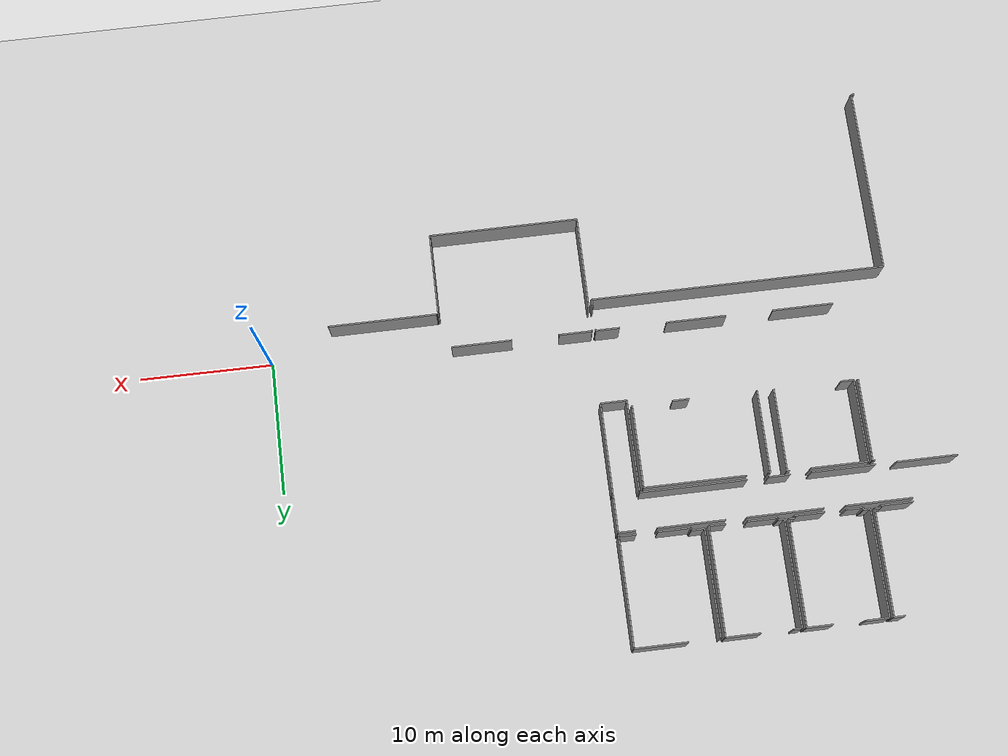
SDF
<sdf version="1.6">
 <world name="default">
  <model name="ground_plane">
   <static>1</static>
   <link name="link">
    <collision name="collision">
     <geometry><plane><normal>0 0 1</normal><size>100 100</size></plane></geometry>
     <surface><friction><ode><mu>100</mu><mu2>50</mu2></ode></friction></surface>
    </collision>
    <visual name="visual">
     <cast_shadows>0</cast_shadows>
     <geometry><plane><normal>0 0 1</normal><size>100 100</size></plane></geometry>
     <material>
      <script><uri>file://media/materials/scripts/gazebo.material</uri><name>Gazebo/Grey</name></script>
     </material>
    </visual>
   </link>
  </model>
  <model name="50057024">
   <static>1</static>
   <link name="Wall_9">
    <collision name="Wall_9_Collision">
     <geometry><box><size>0.824693894374 0.1 2.5</size></box></geometry>
     <pose>0.412346947187 0 1.25 0 0 0</pose>
    </collision>
    <visual name="Wall_9_Visual">
     <pose>0.412346947187 0 1.25 0 0 0</pose>
     <geometry><box><size>0.824693894374 0.1 2.5</size></box></geometry>
     <material>
      <script><uri>file://media/materials/scripts/gazebo.material</uri><name>Gazebo/Grey</name></script>
      <ambient>1 1 1 1</ambient>
     </material>
    </visual>
    <pose>12.590183061 -0.0110331183777 0 0 0 0.0</pose>
   </link>
   <link name="Wall_10">
    <collision name="Wall_10_Collision">
     <geometry><box><size>7.89197689386 0.1 2.5</size></box></geometry>
     <pose>3.94598844693 0 1.25 0 0 0</pose>
    </collision>
    <visual name="Wall_10_Visual">
     <pose>3.94598844693 0 1.25 0 0 0</pose>
     <geometry><box><size>7.89197689386 0.1 2.5</size></box></geometry>
     <material>
      <script><uri>file://media/materials/scripts/gazebo.material</uri><name>Gazebo/Grey</name></script>
      <ambient>1 1 1 1</ambient>
     </material>
    </visual>
    <pose>13.4148769554 -0.0110331183777 0 0 0 -1.57079632679</pose>
   </link>
   <link name="Wall_11">
    <collision name="Wall_11_Collision">
     <geometry><box><size>0.460347353003 0.1 2.5</size></box></geometry>
     <pose>0.230173676501 0 1.25 0 0 0</pose>
    </collision>
    <visual name="Wall_11_Visual">
     <pose>0.230173676501 0 1.25 0 0 0</pose>
     <geometry><box><size>0.460347353003 0.1 2.5</size></box></geometry>
     <material>
      <script><uri>file://media/materials/scripts/gazebo.material</uri><name>Gazebo/Grey</name></script>
      <ambient>1 1 1 1</ambient>
     </material>
    </visual>
    <pose>13.4148769554 -7.90301001224 0 0 0 3.14159265359</pose>
   </link>
   <link name="Wall_12">
    <collision name="Wall_12_Collision">
     <geometry><box><size>0.172598553013 0.1 2.5</size></box></geometry>
     <pose>0.0862992765064 0 1.25 0 0 0</pose>
    </collision>
    <visual name="Wall_12_Visual">
     <pose>0.0862992765064 0 1.25 0 0 0</pose>
     <geometry><box><size>0.172598553013 0.1 2.5</size></box></geometry>
     <material>
      <script><uri>file://media/materials/scripts/gazebo.material</uri><name>Gazebo/Grey</name></script>
      <ambient>1 1 1 1</ambient>
     </material>
    </visual>
    <pose>12.9545296024 -7.90301001224 0 0 0 -1.57079632679</pose>
   </link>
   <link name="Wall_13">
    <collision name="Wall_13_Collision">
     <geometry><box><size>2.41993063085 0.1 2.5</size></box></geometry>
     <pose>1.20996531543 0 1.25 0 0 0</pose>
    </collision>
    <visual name="Wall_13_Visual">
     <pose>1.20996531543 0 1.25 0 0 0</pose>
     <geometry><box><size>2.41993063085 0.1 2.5</size></box></geometry>
     <material>
      <script><uri>file://media/materials/scripts/gazebo.material</uri><name>Gazebo/Grey</name></script>
      <ambient>1 1 1 1</ambient>
     </material>
    </visual>
    <pose>12.9545296024 -8.07560856525 0 0 0 3.14159265359</pose>
   </link>
   <link name="Wall_15">
    <collision name="Wall_15_Collision">
     <geometry><box><size>7.90351728205 0.1 2.5</size></box></geometry>
     <pose>3.95175864102 0 1.25 0 0 0</pose>
    </collision>
    <visual name="Wall_15_Visual">
     <pose>3.95175864102 0 1.25 0 0 0</pose>
     <geometry><box><size>7.90351728205 0.1 2.5</size></box></geometry>
     <material>
      <script><uri>file://media/materials/scripts/gazebo.material</uri><name>Gazebo/Grey</name></script>
      <ambient>1 1 1 1</ambient>
     </material>
    </visual>
    <pose>13.7032598426 -7.91974991598 0 0 0 1.57079632679</pose>
   </link>
   <link name="Wall_16">
    <collision name="Wall_16_Collision">
     <geometry><box><size>1.74754449707 0.1 2.5</size></box></geometry>
     <pose>0.873772248537 0 1.25 0 0 0</pose>
    </collision>
    <visual name="Wall_16_Visual">
     <pose>0.873772248537 0 1.25 0 0 0</pose>
     <geometry><box><size>1.74754449707 0.1 2.5</size></box></geometry>
     <material>
      <script><uri>file://media/materials/scripts/gazebo.material</uri><name>Gazebo/Grey</name></script>
      <ambient>1 1 1 1</ambient>
     </material>
    </visual>
    <pose>13.7032598426 -0.0162326339351 0 0 0 0.0</pose>
   </link>
   <link name="Wall_17">
    <collision name="Wall_17_Collision">
     <geometry><box><size>1.92141122461 0.1 2.5</size></box></geometry>
     <pose>0.960705612306 0 1.25 0 0 0</pose>
    </collision>
    <visual name="Wall_17_Visual">
     <pose>0.960705612306 0 1.25 0 0 0</pose>
     <geometry><box><size>1.92141122461 0.1 2.5</size></box></geometry>
     <material>
      <script><uri>file://media/materials/scripts/gazebo.material</uri><name>Gazebo/Grey</name></script>
      <ambient>1 1 1 1</ambient>
     </material>
    </visual>
    <pose>17.7782850476 -0.0162326339351 0 0 0 0.0</pose>
   </link>
   <link name="Wall_18">
    <collision name="Wall_18_Collision">
     <geometry><box><size>7.8771392519 0.1 2.5</size></box></geometry>
     <pose>3.93856962595 0 1.25 0 0 0</pose>
    </collision>
    <visual name="Wall_18_Visual">
     <pose>3.93856962595 0 1.25 0 0 0</pose>
     <geometry><box><size>7.8771392519 0.1 2.5</size></box></geometry>
     <material>
      <script><uri>file://media/materials/scripts/gazebo.material</uri><name>Gazebo/Grey</name></script>
      <ambient>1 1 1 1</ambient>
     </material>
    </visual>
    <pose>19.6996962722 -0.0162326339351 0 0 0 -1.57079632679</pose>
   </link>
   <link name="Wall_19">
    <collision name="Wall_19_Collision">
     <geometry><box><size>0.435364314837 0.1 2.5</size></box></geometry>
     <pose>0.217682157419 0 1.25 0 0 0</pose>
    </collision>
    <visual name="Wall_19_Visual">
     <pose>0.217682157419 0 1.25 0 0 0</pose>
     <geometry><box><size>0.435364314837 0.1 2.5</size></box></geometry>
     <material>
      <script><uri>file://media/materials/scripts/gazebo.material</uri><name>Gazebo/Grey</name></script>
      <ambient>1 1 1 1</ambient>
     </material>
    </visual>
    <pose>19.6996962722 -7.89337188584 0 0 0 3.14159265359</pose>
   </link>
   <link name="Wall_20">
    <collision name="Wall_20_Collision">
     <geometry><box><size>0.182236679412 0.1 2.5</size></box></geometry>
     <pose>0.0911183397059 0 1.25 0 0 0</pose>
    </collision>
    <visual name="Wall_20_Visual">
     <pose>0.0911183397059 0 1.25 0 0 0</pose>
     <geometry><box><size>0.182236679412 0.1 2.5</size></box></geometry>
     <material>
      <script><uri>file://media/materials/scripts/gazebo.material</uri><name>Gazebo/Grey</name></script>
      <ambient>1 1 1 1</ambient>
     </material>
    </visual>
    <pose>19.2643319574 -7.89337188584 0 0 0 -1.57079632679</pose>
   </link>
   <link name="Wall_21">
    <collision name="Wall_21_Collision">
     <geometry><box><size>2.21841769864 0.1 2.5</size></box></geometry>
     <pose>1.10920884932 0 1.25 0 0 0</pose>
    </collision>
    <visual name="Wall_21_Visual">
     <pose>1.10920884932 0 1.25 0 0 0</pose>
     <geometry><box><size>2.21841769864 0.1 2.5</size></box></geometry>
     <material>
      <script><uri>file://media/materials/scripts/gazebo.material</uri><name>Gazebo/Grey</name></script>
      <ambient>1 1 1 1</ambient>
     </material>
    </visual>
    <pose>19.2643319574 -8.07560856525 0 0 0 3.14159265359</pose>
   </link>
   <link name="Wall_22">
    <collision name="Wall_22_Collision">
     <geometry><box><size>1.23913332953 0.1 2.5</size></box></geometry>
     <pose>0.619566664764 0 1.25 0 0 0</pose>
    </collision>
    <visual name="Wall_22_Visual">
     <pose>0.619566664764 0 1.25 0 0 0</pose>
     <geometry><box><size>1.23913332953 0.1 2.5</size></box></geometry>
     <material>
      <script><uri>file://media/materials/scripts/gazebo.material</uri><name>Gazebo/Grey</name></script>
      <ambient>1 1 1 1</ambient>
     </material>
    </visual>
    <pose>15.4689392354 -8.07560856525 0 0 0 3.14159265359</pose>
   </link>
   <link name="Wall_23">
    <collision name="Wall_23_Collision">
     <geometry><box><size>0.177924886023 0.1 2.5</size></box></geometry>
     <pose>0.0889624430114 0 1.25 0 0 0</pose>
    </collision>
    <visual name="Wall_23_Visual">
     <pose>0.0889624430114 0 1.25 0 0 0</pose>
     <geometry><box><size>0.177924886023 0.1 2.5</size></box></geometry>
     <material>
      <script><uri>file://media/materials/scripts/gazebo.material</uri><name>Gazebo/Grey</name></script>
      <ambient>1 1 1 1</ambient>
     </material>
    </visual>
    <pose>14.2298059059 -8.07560856525 0 0 0 1.57079632679</pose>
   </link>
   <link name="Wall_24">
    <collision name="Wall_24_Collision">
     <geometry><box><size>0.527008231007 0.1 2.5</size></box></geometry>
     <pose>0.263504115503 0 1.25 0 0 0</pose>
    </collision>
    <visual name="Wall_24_Visual">
     <pose>0.263504115503 0 1.25 0 0 0</pose>
     <geometry><box><size>0.527008231007 0.1 2.5</size></box></geometry>
     <material>
      <script><uri>file://media/materials/scripts/gazebo.material</uri><name>Gazebo/Grey</name></script>
      <ambient>1 1 1 1</ambient>
     </material>
    </visual>
    <pose>14.2298059059 -7.89768367923 0 0 0 -3.09970964653</pose>
   </link>
   <link name="Wall_25">
    <collision name="Wall_25_Collision">
     <geometry><box><size>7.91315540845 0.1 2.5</size></box></geometry>
     <pose>3.95657770422 0 1.25 0 0 0</pose>
    </collision>
    <visual name="Wall_25_Visual">
     <pose>3.95657770422 0 1.25 0 0 0</pose>
     <geometry><box><size>7.91315540845 0.1 2.5</size></box></geometry>
     <material>
      <script><uri>file://media/materials/scripts/gazebo.material</uri><name>Gazebo/Grey</name></script>
      <ambient>1 1 1 1</ambient>
     </material>
    </visual>
    <pose>20.003931341 -7.92837350276 0 0 0 1.57079632679</pose>
   </link>
   <link name="Wall_26">
    <collision name="Wall_26_Collision">
     <geometry><box><size>0.617093724438 0.1 2.5</size></box></geometry>
     <pose>0.308546862219 0 1.25 0 0 0</pose>
    </collision>
    <visual name="Wall_26_Visual">
     <pose>0.308546862219 0 1.25 0 0 0</pose>
     <geometry><box><size>0.617093724438 0.1 2.5</size></box></geometry>
     <material>
      <script><uri>file://media/materials/scripts/gazebo.material</uri><name>Gazebo/Grey</name></script>
      <ambient>1 1 1 1</ambient>
     </material>
    </visual>
    <pose>20.003931341 -0.0152180943141 0 0 0 0.0</pose>
   </link>
   <link name="Wall_27">
    <collision name="Wall_27_Collision">
     <geometry><box><size>2.54877716271 0.1 2.5</size></box></geometry>
     <pose>1.27438858136 0 1.25 0 0 0</pose>
    </collision>
    <visual name="Wall_27_Visual">
     <pose>1.27438858136 0 1.25 0 0 0</pose>
     <geometry><box><size>2.54877716271 0.1 2.5</size></box></geometry>
     <material>
      <script><uri>file://media/materials/scripts/gazebo.material</uri><name>Gazebo/Grey</name></script>
      <ambient>1 1 1 1</ambient>
     </material>
    </visual>
    <pose>22.9723474545 -0.0152180943141 0 0 0 0.0</pose>
   </link>
   <link name="Wall_28">
    <collision name="Wall_28_Collision">
     <geometry><box><size>8.04834281294 0.1 2.5</size></box></geometry>
     <pose>4.02417140647 0 1.25 0 0 0</pose>
    </collision>
    <visual name="Wall_28_Visual">
     <pose>4.02417140647 0 1.25 0 0 0</pose>
     <geometry><box><size>8.04834281294 0.1 2.5</size></box></geometry>
     <material>
      <script><uri>file://media/materials/scripts/gazebo.material</uri><name>Gazebo/Grey</name></script>
      <ambient>1 1 1 1</ambient>
     </material>
    </visual>
    <pose>25.5211246172 -0.0152180943141 0 0 0 -1.57079632679</pose>
   </link>
   <link name="Wall_29">
    <collision name="Wall_29_Collision">
     <geometry><box><size>1.25866321723 0.1 2.5</size></box></geometry>
     <pose>0.629331608616 0 1.25 0 0 0</pose>
    </collision>
    <visual name="Wall_29_Visual">
     <pose>0.629331608616 0 1.25 0 0 0</pose>
     <geometry><box><size>1.25866321723 0.1 2.5</size></box></geometry>
     <material>
      <script><uri>file://media/materials/scripts/gazebo.material</uri><name>Gazebo/Grey</name></script>
      <ambient>1 1 1 1</ambient>
     </material>
    </visual>
    <pose>25.5211246172 -8.06356090725 0 0 0 3.14159265359</pose>
   </link>
   <link name="Wall_30">
    <collision name="Wall_30_Collision">
     <geometry><box><size>2.2043409614 0.1 2.5</size></box></geometry>
     <pose>1.1021704807 0 1.25 0 0 0</pose>
    </collision>
    <visual name="Wall_30_Visual">
     <pose>1.1021704807 0 1.25 0 0 0</pose>
     <geometry><box><size>2.2043409614 0.1 2.5</size></box></geometry>
     <material>
      <script><uri>file://media/materials/scripts/gazebo.material</uri><name>Gazebo/Grey</name></script>
      <ambient>1 1 1 1</ambient>
     </material>
    </visual>
    <pose>22.6871350035 -8.06356090725 0 0 0 3.14159265359</pose>
   </link>
   <link name="Wall_31">
    <collision name="Wall_31_Collision">
     <geometry><box><size>0.15116640352 0.1 2.5</size></box></geometry>
     <pose>0.0755832017602 0 1.25 0 0 0</pose>
    </collision>
    <visual name="Wall_31_Visual">
     <pose>0.0755832017602 0 1.25 0 0 0</pose>
     <geometry><box><size>0.15116640352 0.1 2.5</size></box></geometry>
     <material>
      <script><uri>file://media/materials/scripts/gazebo.material</uri><name>Gazebo/Grey</name></script>
      <ambient>1 1 1 1</ambient>
     </material>
    </visual>
    <pose>20.4827940421 -8.06356090725 0 0 0 1.57079632679</pose>
   </link>
   <link name="Wall_32">
    <collision name="Wall_32_Collision">
     <geometry><box><size>0.47912922568 0.1 2.5</size></box></geometry>
     <pose>0.23956461284 0 1.25 0 0 0</pose>
    </collision>
    <visual name="Wall_32_Visual">
     <pose>0.23956461284 0 1.25 0 0 0</pose>
     <geometry><box><size>0.47912922568 0.1 2.5</size></box></geometry>
     <material>
      <script><uri>file://media/materials/scripts/gazebo.material</uri><name>Gazebo/Grey</name></script>
      <ambient>1 1 1 1</ambient>
     </material>
    </visual>
    <pose>20.4827940421 -7.91239450373 0 0 0 -3.10823638621</pose>
   </link>
   <link name="Wall_33">
    <collision name="Wall_33_Collision">
     <geometry><box><size>7.90554636129 0.1 2.5</size></box></geometry>
     <pose>3.95277318065 0 1.25 0 0 0</pose>
    </collision>
    <visual name="Wall_33_Visual">
     <pose>3.95277318065 0 1.25 0 0 0</pose>
     <geometry><box><size>7.90554636129 0.1 2.5</size></box></geometry>
     <material>
      <script><uri>file://media/materials/scripts/gazebo.material</uri><name>Gazebo/Grey</name></script>
      <ambient>1 1 1 1</ambient>
     </material>
    </visual>
    <pose>25.8339832728 -7.91239450373 0 0 0 1.57079632679</pose>
   </link>
   <link name="Wall_34">
    <collision name="Wall_34_Collision">
     <geometry><box><size>3.89405670008 0.1 2.5</size></box></geometry>
     <pose>1.94702835004 0 1.25 0 0 0</pose>
    </collision>
    <visual name="Wall_34_Visual">
     <pose>1.94702835004 0 1.25 0 0 0</pose>
     <geometry><box><size>3.89405670008 0.1 2.5</size></box></geometry>
     <material>
      <script><uri>file://media/materials/scripts/gazebo.material</uri><name>Gazebo/Grey</name></script>
      <ambient>1 1 1 1</ambient>
     </material>
    </visual>
    <pose>28.1755407179 -0.00684814244136 0 0 0 0.0</pose>
   </link>
   <link name="Wall_35">
    <collision name="Wall_35_Collision">
     <geometry><box><size>8.07827173176 0.1 2.5</size></box></geometry>
     <pose>4.03913586588 0 1.25 0 0 0</pose>
    </collision>
    <visual name="Wall_35_Visual">
     <pose>4.03913586588 0 1.25 0 0 0</pose>
     <geometry><box><size>8.07827173176 0.1 2.5</size></box></geometry>
     <material>
      <script><uri>file://media/materials/scripts/gazebo.material</uri><name>Gazebo/Grey</name></script>
      <ambient>1 1 1 1</ambient>
     </material>
    </visual>
    <pose>32.069597418 -0.00684814244136 0 0 0 -1.57079632679</pose>
   </link>
   <link name="Wall_36">
    <collision name="Wall_36_Collision">
     <geometry><box><size>1.25993139176 0.1 2.5</size></box></geometry>
     <pose>0.629965695879 0 1.25 0 0 0</pose>
    </collision>
    <visual name="Wall_36_Visual">
     <pose>0.629965695879 0 1.25 0 0 0</pose>
     <geometry><box><size>1.25993139176 0.1 2.5</size></box></geometry>
     <material>
      <script><uri>file://media/materials/scripts/gazebo.material</uri><name>Gazebo/Grey</name></script>
      <ambient>1 1 1 1</ambient>
     </material>
    </visual>
    <pose>32.069597418 -8.0851198742 0 0 0 3.14159265359</pose>
   </link>
   <link name="Wall_37">
    <collision name="Wall_37_Collision">
     <geometry><box><size>2.41840882142 0.1 2.5</size></box></geometry>
     <pose>1.20920441071 0 1.25 0 0 0</pose>
    </collision>
    <visual name="Wall_37_Visual">
     <pose>1.20920441071 0 1.25 0 0 0</pose>
     <geometry><box><size>2.41840882142 0.1 2.5</size></box></geometry>
     <material>
      <script><uri>file://media/materials/scripts/gazebo.material</uri><name>Gazebo/Grey</name></script>
      <ambient>1 1 1 1</ambient>
     </material>
    </visual>
    <pose>29.2274914874 -8.0851198742 0 0 0 3.14159265359</pose>
   </link>
   <link name="Wall_38">
    <collision name="Wall_38_Collision">
     <geometry><box><size>0.182743949222 0.1 2.5</size></box></geometry>
     <pose>0.0913719746111 0 1.25 0 0 0</pose>
    </collision>
    <visual name="Wall_38_Visual">
     <pose>0.0913719746111 0 1.25 0 0 0</pose>
     <geometry><box><size>0.182743949222 0.1 2.5</size></box></geometry>
     <material>
      <script><uri>file://media/materials/scripts/gazebo.material</uri><name>Gazebo/Grey</name></script>
      <ambient>1 1 1 1</ambient>
     </material>
    </visual>
    <pose>26.809082666 -8.0851198742 0 0 0 1.57079632679</pose>
   </link>
   <link name="Wall_39">
    <collision name="Wall_39_Collision">
     <geometry><box><size>0.975150859353 0.1 2.5</size></box></geometry>
     <pose>0.487575429677 0 1.25 0 0 0</pose>
    </collision>
    <visual name="Wall_39_Visual">
     <pose>0.487575429677 0 1.25 0 0 0</pose>
     <geometry><box><size>0.975150859353 0.1 2.5</size></box></geometry>
     <material>
      <script><uri>file://media/materials/scripts/gazebo.material</uri><name>Gazebo/Grey</name></script>
      <ambient>1 1 1 1</ambient>
     </material>
    </visual>
    <pose>26.809082666 -7.90237592497 0 0 0 -3.1313185971</pose>
   </link>
   <link name="Wall_43">
    <collision name="Wall_43_Collision">
     <geometry><box><size>4.94867063605 0.1 2.5</size></box></geometry>
     <pose>2.47433531803 0 1.25 0 0 0</pose>
    </collision>
    <visual name="Wall_43_Visual">
     <pose>2.47433531803 0 1.25 0 0 0</pose>
     <geometry><box><size>4.94867063605 0.1 2.5</size></box></geometry>
     <material>
      <script><uri>file://media/materials/scripts/gazebo.material</uri><name>Gazebo/Grey</name></script>
      <ambient>1 1 1 1</ambient>
     </material>
    </visual>
    <pose>10.5093622984 -8.34027658886 0 0 0 0.0</pose>
   </link>
   <link name="Wall_44">
    <collision name="Wall_44_Collision">
     <geometry><box><size>5.66176517212 0.1 2.5</size></box></geometry>
     <pose>2.83088258606 0 1.25 0 0 0</pose>
    </collision>
    <visual name="Wall_44_Visual">
     <pose>2.83088258606 0 1.25 0 0 0</pose>
     <geometry><box><size>5.66176517212 0.1 2.5</size></box></geometry>
     <material>
      <script><uri>file://media/materials/scripts/gazebo.material</uri><name>Gazebo/Grey</name></script>
      <ambient>1 1 1 1</ambient>
     </material>
    </visual>
    <pose>17.0205507682 -8.34027658886 0 0 0 0.0</pose>
   </link>
   <link name="Wall_45">
    <collision name="Wall_45_Collision">
     <geometry><box><size>4.98646223693 0.1 2.5</size></box></geometry>
     <pose>2.49323111847 0 1.25 0 0 0</pose>
    </collision>
    <visual name="Wall_45_Visual">
     <pose>2.49323111847 0 1.25 0 0 0</pose>
     <geometry><box><size>4.98646223693 0.1 2.5</size></box></geometry>
     <material>
      <script><uri>file://media/materials/scripts/gazebo.material</uri><name>Gazebo/Grey</name></script>
      <ambient>1 1 1 1</ambient>
     </material>
    </visual>
    <pose>24.2506673768 -8.34027658886 0 0 0 0.0</pose>
   </link>
   <link name="Wall_46">
    <collision name="Wall_46_Collision">
     <geometry><box><size>1.29252347708 0.1 2.5</size></box></geometry>
     <pose>0.64626173854 0 1.25 0 0 0</pose>
    </collision>
    <visual name="Wall_46_Visual">
     <pose>0.64626173854 0 1.25 0 0 0</pose>
     <geometry><box><size>1.29252347708 0.1 2.5</size></box></geometry>
     <material>
      <script><uri>file://media/materials/scripts/gazebo.material</uri><name>Gazebo/Grey</name></script>
      <ambient>1 1 1 1</ambient>
     </material>
    </visual>
    <pose>30.7938138447 -8.34027658886 0 0 0 0.0</pose>
   </link>
   <link name="Wall_47">
    <collision name="Wall_47_Collision">
     <geometry><box><size>2.76474728452 0.1 2.5</size></box></geometry>
     <pose>1.38237364226 0 1.25 0 0 0</pose>
    </collision>
    <visual name="Wall_47_Visual">
     <pose>1.38237364226 0 1.25 0 0 0</pose>
     <geometry><box><size>2.76474728452 0.1 2.5</size></box></geometry>
     <material>
      <script><uri>file://media/materials/scripts/gazebo.material</uri><name>Gazebo/Grey</name></script>
      <ambient>1 1 1 1</ambient>
     </material>
    </visual>
    <pose>32.0863373217 -8.34027658886 0 0 0 -1.57079632679</pose>
   </link>
   <link name="Wall_48">
    <collision name="Wall_48_Collision">
     <geometry><box><size>7.89032826698 0.1 2.5</size></box></geometry>
     <pose>3.94516413349 0 1.25 0 0 0</pose>
    </collision>
    <visual name="Wall_48_Visual">
     <pose>3.94516413349 0 1.25 0 0 0</pose>
     <geometry><box><size>7.89032826698 0.1 2.5</size></box></geometry>
     <material>
      <script><uri>file://media/materials/scripts/gazebo.material</uri><name>Gazebo/Grey</name></script>
      <ambient>1 1 1 1</ambient>
     </material>
    </visual>
    <pose>30.126500409 -11.1050238734 0 0 0 3.14159265359</pose>
   </link>
   <link name="Wall_49">
    <collision name="Wall_49_Collision">
     <geometry><box><size>1.60436759307 0.1 2.5</size></box></geometry>
     <pose>0.802183796534 0 1.25 0 0 0</pose>
    </collision>
    <visual name="Wall_49_Visual">
     <pose>0.802183796534 0 1.25 0 0 0</pose>
     <geometry><box><size>1.60436759307 0.1 2.5</size></box></geometry>
     <material>
      <script><uri>file://media/materials/scripts/gazebo.material</uri><name>Gazebo/Grey</name></script>
      <ambient>1 1 1 1</ambient>
     </material>
    </visual>
    <pose>20.6674402531 -11.1050238734 0 0 0 3.14159265359</pose>
   </link>
   <link name="Wall_50">
    <collision name="Wall_50_Collision">
     <geometry><box><size>4.72204784822 0.1 2.5</size></box></geometry>
     <pose>2.36102392411 0 1.25 0 0 0</pose>
    </collision>
    <visual name="Wall_50_Visual">
     <pose>2.36102392411 0 1.25 0 0 0</pose>
     <geometry><box><size>4.72204784822 0.1 2.5</size></box></geometry>
     <material>
      <script><uri>file://media/materials/scripts/gazebo.material</uri><name>Gazebo/Grey</name></script>
      <ambient>1 1 1 1</ambient>
     </material>
    </visual>
    <pose>17.4964966679 -11.1050238734 0 0 0 3.14159265359</pose>
   </link>
   <link name="Wall_51">
    <collision name="Wall_51_Collision">
     <geometry><box><size>4.5318216693 0.1 2.5</size></box></geometry>
     <pose>2.26591083465 0 1.25 0 0 0</pose>
    </collision>
    <visual name="Wall_51_Visual">
     <pose>2.26591083465 0 1.25 0 0 0</pose>
     <geometry><box><size>4.5318216693 0.1 2.5</size></box></geometry>
     <material>
      <script><uri>file://media/materials/scripts/gazebo.material</uri><name>Gazebo/Grey</name></script>
      <ambient>1 1 1 1</ambient>
     </material>
    </visual>
    <pose>11.2090141845 -11.1050238734 0 0 0 3.14159265359</pose>
   </link>
   <link name="Wall_56">
    <collision name="Wall_56_Collision">
     <geometry><box><size>0.175134902065 0.1 2.5</size></box></geometry>
     <pose>0.0875674510326 0 1.25 0 0 0</pose>
    </collision>
    <visual name="Wall_56_Visual">
     <pose>0.0875674510326 0 1.25 0 0 0</pose>
     <geometry><box><size>0.175134902065 0.1 2.5</size></box></geometry>
     <material>
      <script><uri>file://media/materials/scripts/gazebo.material</uri><name>Gazebo/Grey</name></script>
      <ambient>1 1 1 1</ambient>
     </material>
    </visual>
    <pose>12.7660788678 -11.4025376172 0 0 0 0.0</pose>
   </link>
   <link name="Wall_57">
    <collision name="Wall_57_Collision">
     <geometry><box><size>6.19401802076 0.1 2.5</size></box></geometry>
     <pose>3.09700901038 0 1.25 0 0 0</pose>
    </collision>
    <visual name="Wall_57_Visual">
     <pose>3.09700901038 0 1.25 0 0 0</pose>
     <geometry><box><size>6.19401802076 0.1 2.5</size></box></geometry>
     <material>
      <script><uri>file://media/materials/scripts/gazebo.material</uri><name>Gazebo/Grey</name></script>
      <ambient>1 1 1 1</ambient>
     </material>
    </visual>
    <pose>12.9412137698 -11.4025376172 0 0 0 -1.57079632679</pose>
   </link>
   <link name="Wall_59">
    <collision name="Wall_59_Collision">
     <geometry><box><size>6.21139201177 0.1 2.5</size></box></geometry>
     <pose>3.10569600588 0 1.25 0 0 0</pose>
    </collision>
    <visual name="Wall_59_Visual">
     <pose>3.10569600588 0 1.25 0 0 0</pose>
     <geometry><box><size>6.21139201177 0.1 2.5</size></box></geometry>
     <material>
      <script><uri>file://media/materials/scripts/gazebo.material</uri><name>Gazebo/Grey</name></script>
      <ambient>1 1 1 1</ambient>
     </material>
    </visual>
    <pose>13.240502958 -17.5869175116 0 0 0 1.57079632679</pose>
   </link>
   <link name="Wall_60">
    <collision name="Wall_60_Collision">
     <geometry><box><size>4.24521422638 0.1 2.5</size></box></geometry>
     <pose>2.12260711319 0 1.25 0 0 0</pose>
    </collision>
    <visual name="Wall_60_Visual">
     <pose>2.12260711319 0 1.25 0 0 0</pose>
     <geometry><box><size>4.24521422638 0.1 2.5</size></box></geometry>
     <material>
      <script><uri>file://media/materials/scripts/gazebo.material</uri><name>Gazebo/Grey</name></script>
      <ambient>1 1 1 1</ambient>
     </material>
    </visual>
    <pose>13.240502958 -11.3755254998 0 0 0 0.0</pose>
   </link>
   <link name="Wall_61">
    <collision name="Wall_61_Collision">
     <geometry><box><size>0.201766567115 0.1 2.5</size></box></geometry>
     <pose>0.100883283557 0 1.25 0 0 0</pose>
    </collision>
    <visual name="Wall_61_Visual">
     <pose>0.100883283557 0 1.25 0 0 0</pose>
     <geometry><box><size>0.201766567115 0.1 2.5</size></box></geometry>
     <material>
      <script><uri>file://media/materials/scripts/gazebo.material</uri><name>Gazebo/Grey</name></script>
      <ambient>1 1 1 1</ambient>
     </material>
    </visual>
    <pose>19.053814986 -11.3755254998 0 0 0 0.0</pose>
   </link>
   <link name="Wall_62">
    <collision name="Wall_62_Collision">
     <geometry><box><size>6.20505113914 0.1 2.5</size></box></geometry>
     <pose>3.10252556957 0 1.25 0 0 0</pose>
    </collision>
    <visual name="Wall_62_Visual">
     <pose>3.10252556957 0 1.25 0 0 0</pose>
     <geometry><box><size>6.20505113914 0.1 2.5</size></box></geometry>
     <material>
      <script><uri>file://media/materials/scripts/gazebo.material</uri><name>Gazebo/Grey</name></script>
      <ambient>1 1 1 1</ambient>
     </material>
    </visual>
    <pose>19.2555815531 -11.3755254998 0 0 0 -1.57079632679</pose>
   </link>
   <link name="Wall_63">
    <collision name="Wall_63_Collision">
     <geometry><box><size>0.971061937336 0.1 2.5</size></box></geometry>
     <pose>0.485530968668 0 1.25 0 0 0</pose>
    </collision>
    <visual name="Wall_63_Visual">
     <pose>0.485530968668 0 1.25 0 0 0</pose>
     <geometry><box><size>0.971061937336 0.1 2.5</size></box></geometry>
     <material>
      <script><uri>file://media/materials/scripts/gazebo.material</uri><name>Gazebo/Grey</name></script>
      <ambient>1 1 1 1</ambient>
     </material>
    </visual>
    <pose>14.2115441927 -17.580576639 0 0 0 -3.13506277383</pose>
   </link>
   <link name="Wall_64">
    <collision name="Wall_64_Collision">
     <geometry><box><size>6.20403659952 0.1 2.5</size></box></geometry>
     <pose>3.10201829976 0 1.25 0 0 0</pose>
    </collision>
    <visual name="Wall_64_Visual">
     <pose>3.10201829976 0 1.25 0 0 0</pose>
     <geometry><box><size>6.20403659952 0.1 2.5</size></box></geometry>
     <material>
      <script><uri>file://media/materials/scripts/gazebo.material</uri><name>Gazebo/Grey</name></script>
      <ambient>1 1 1 1</ambient>
     </material>
    </visual>
    <pose>20.4973780492 -17.5922438446 0 0 0 1.57079632679</pose>
   </link>
   <link name="Wall_65">
    <collision name="Wall_65_Collision">
     <geometry><box><size>0.137723753543 0.1 2.5</size></box></geometry>
     <pose>0.0688618767715 0 1.25 0 0 0</pose>
    </collision>
    <visual name="Wall_65_Visual">
     <pose>0.0688618767715 0 1.25 0 0 0</pose>
     <geometry><box><size>0.137723753543 0.1 2.5</size></box></geometry>
     <material>
      <script><uri>file://media/materials/scripts/gazebo.material</uri><name>Gazebo/Grey</name></script>
      <ambient>1 1 1 1</ambient>
     </material>
    </visual>
    <pose>20.4973780492 -11.3882072451 0 0 0 0.0</pose>
   </link>
   <link name="Wall_66">
    <collision name="Wall_66_Collision">
     <geometry><box><size>7.57391872269 0.1 2.5</size></box></geometry>
     <pose>3.78695936135 0 1.25 0 0 0</pose>
    </collision>
    <visual name="Wall_66_Visual">
     <pose>3.78695936135 0 1.25 0 0 0</pose>
     <geometry><box><size>7.57391872269 0.1 2.5</size></box></geometry>
     <material>
      <script><uri>file://media/materials/scripts/gazebo.material</uri><name>Gazebo/Grey</name></script>
      <ambient>1 1 1 1</ambient>
     </material>
    </visual>
    <pose>22.2385816736 -11.3882072451 0 0 0 0.0</pose>
   </link>
   <link name="Wall_67">
    <collision name="Wall_67_Collision">
     <geometry><box><size>6.2008661632 0.1 2.5</size></box></geometry>
     <pose>3.1004330816 0 1.25 0 0 0</pose>
    </collision>
    <visual name="Wall_67_Visual">
     <pose>3.1004330816 0 1.25 0 0 0</pose>
     <geometry><box><size>6.2008661632 0.1 2.5</size></box></geometry>
     <material>
      <script><uri>file://media/materials/scripts/gazebo.material</uri><name>Gazebo/Grey</name></script>
      <ambient>1 1 1 1</ambient>
     </material>
    </visual>
    <pose>29.8125003963 -11.3882072451 0 0 0 -1.57079632679</pose>
   </link>
   <link name="Wall_68">
    <collision name="Wall_68_Collision">
     <geometry><box><size>1.23989423424 0.1 2.5</size></box></geometry>
     <pose>0.619947117122 0 1.25 0 0 0</pose>
    </collision>
    <visual name="Wall_68_Visual">
     <pose>0.619947117122 0 1.25 0 0 0</pose>
     <geometry><box><size>1.23989423424 0.1 2.5</size></box></geometry>
     <material>
      <script><uri>file://media/materials/scripts/gazebo.material</uri><name>Gazebo/Grey</name></script>
      <ambient>1 1 1 1</ambient>
     </material>
    </visual>
    <pose>26.7983031825 -17.5890734083 0 0 0 3.14159265359</pose>
   </link>
   <link name="Wall_69">
    <collision name="Wall_69_Collision">
     <geometry><box><size>0.0219163160995 0.1 2.5</size></box></geometry>
     <pose>0.0109581580497 0 1.25 0 0 0</pose>
    </collision>
    <visual name="Wall_69_Visual">
     <pose>0.0109581580497 0 1.25 0 0 0</pose>
     <geometry><box><size>0.0219163160995 0.1 2.5</size></box></geometry>
     <material>
      <script><uri>file://media/materials/scripts/gazebo.material</uri><name>Gazebo/Grey</name></script>
      <ambient>1 1 1 1</ambient>
     </material>
    </visual>
    <pose>20.5190638336 -17.5890734083 0 0 0 -2.99642228825</pose>
   </link>
   <link name="Wall_70">
    <collision name="Wall_70_Collision">
     <geometry><box><size>6.78359235798 0.1 2.5</size></box></geometry>
     <pose>3.39179617899 0 1.25 0 0 0</pose>
    </collision>
    <visual name="Wall_70_Visual">
     <pose>3.39179617899 0 1.25 0 0 0</pose>
     <geometry><box><size>6.78359235798 0.1 2.5</size></box></geometry>
     <material>
      <script><uri>file://media/materials/scripts/gazebo.material</uri><name>Gazebo/Grey</name></script>
      <ambient>1 1 1 1</ambient>
     </material>
    </visual>
    <pose>30.1384212495 -18.0196186599 0 0 0 1.57079632679</pose>
   </link>
   <link name="Wall_71">
    <collision name="Wall_71_Collision">
     <geometry><box><size>6.78359235798 0.1 2.5</size></box></geometry>
     <pose>3.39179617899 0 1.25 0 0 0</pose>
    </collision>
    <visual name="Wall_71_Visual">
     <pose>3.39179617899 0 1.25 0 0 0</pose>
     <geometry><box><size>6.78359235798 0.1 2.5</size></box></geometry>
     <material>
      <script><uri>file://media/materials/scripts/gazebo.material</uri><name>Gazebo/Grey</name></script>
      <ambient>1 1 1 1</ambient>
     </material>
    </visual>
    <pose>32.0911563849 -11.2360263019 0 0 0 -1.57079632679</pose>
   </link>
   <link name="Wall_72">
    <collision name="Wall_72_Collision">
     <geometry><box><size>1.95273513541 0.1 2.5</size></box></geometry>
     <pose>0.976367567705 0 1.25 0 0 0</pose>
    </collision>
    <visual name="Wall_72_Visual">
     <pose>0.976367567705 0 1.25 0 0 0</pose>
     <geometry><box><size>1.95273513541 0.1 2.5</size></box></geometry>
     <material>
      <script><uri>file://media/materials/scripts/gazebo.material</uri><name>Gazebo/Grey</name></script>
      <ambient>1 1 1 1</ambient>
     </material>
    </visual>
    <pose>32.0911563849 -18.0196186599 0 0 0 3.14159265359</pose>
   </link>
   <link name="Wall_123">
    <collision name="Wall_123_Collision">
     <geometry><box><size>4.56111650085 0.1 2.5</size></box></geometry>
     <pose>2.28055825043 0 1.25 0 0 0</pose>
    </collision>
    <visual name="Wall_123_Visual">
     <pose>2.28055825043 0 1.25 0 0 0</pose>
     <geometry><box><size>4.56111650085 0.1 2.5</size></box></geometry>
     <material>
      <script><uri>file://media/materials/scripts/gazebo.material</uri><name>Gazebo/Grey</name></script>
      <ambient>1 1 1 1</ambient>
     </material>
    </visual>
    <pose>13.8001483764 -23.6145510345 0 0 0 0.0</pose>
   </link>
   <link name="Wall_124">
    <collision name="Wall_124_Collision">
     <geometry><box><size>4.51939355894 0.1 2.5</size></box></geometry>
     <pose>2.25969677947 0 1.25 0 0 0</pose>
    </collision>
    <visual name="Wall_124_Visual">
     <pose>2.25969677947 0 1.25 0 0 0</pose>
     <geometry><box><size>4.51939355894 0.1 2.5</size></box></geometry>
     <material>
      <script><uri>file://media/materials/scripts/gazebo.material</uri><name>Gazebo/Grey</name></script>
      <ambient>1 1 1 1</ambient>
     </material>
    </visual>
    <pose>21.8800687351 -23.6145510345 0 0 0 0.0</pose>
   </link>
   <link name="Wall_125">
    <collision name="Wall_125_Collision">
     <geometry><box><size>1.77645887627 0.1 2.5</size></box></geometry>
     <pose>0.888229438135 0 1.25 0 0 0</pose>
    </collision>
    <visual name="Wall_125_Visual">
     <pose>0.888229438135 0 1.25 0 0 0</pose>
     <geometry><box><size>1.77645887627 0.1 2.5</size></box></geometry>
     <material>
      <script><uri>file://media/materials/scripts/gazebo.material</uri><name>Gazebo/Grey</name></script>
      <ambient>1 1 1 1</ambient>
     </material>
    </visual>
    <pose>29.9379228569 -23.6145510345 0 0 0 0.0</pose>
   </link>
   <link name="Wall_126">
    <collision name="Wall_126_Collision">
     <geometry><box><size>0.0946058196529 0.1 2.5</size></box></geometry>
     <pose>0.0473029098265 0 1.25 0 0 0</pose>
    </collision>
    <visual name="Wall_126_Visual">
     <pose>0.0473029098265 0 1.25 0 0 0</pose>
     <geometry><box><size>0.0946058196529 0.1 2.5</size></box></geometry>
     <material>
      <script><uri>file://media/materials/scripts/gazebo.material</uri><name>Gazebo/Grey</name></script>
      <ambient>1 1 1 1</ambient>
     </material>
    </visual>
    <pose>31.7143817332 -23.6145510345 0 0 0 -1.57079632679</pose>
   </link>
   <link name="Wall_127">
    <collision name="Wall_127_Collision">
     <geometry><box><size>0.604158344271 0.1 2.5</size></box></geometry>
     <pose>0.302079172136 0 1.25 0 0 0</pose>
    </collision>
    <visual name="Wall_127_Visual">
     <pose>0.302079172136 0 1.25 0 0 0</pose>
     <geometry><box><size>0.604158344271 0.1 2.5</size></box></geometry>
     <material>
      <script><uri>file://media/materials/scripts/gazebo.material</uri><name>Gazebo/Grey</name></script>
      <ambient>1 1 1 1</ambient>
     </material>
    </visual>
    <pose>31.7143817332 -25.4512482008 0 0 0 -1.57079632679</pose>
   </link>
   <link name="Wall_128">
    <collision name="Wall_128_Collision">
     <geometry><box><size>22.1926737558 0.1 2.5</size></box></geometry>
     <pose>11.0963368779 0 1.25 0 0 0</pose>
    </collision>
    <visual name="Wall_128_Visual">
     <pose>11.0963368779 0 1.25 0 0 0</pose>
     <geometry><box><size>22.1926737558 0.1 2.5</size></box></geometry>
     <material>
      <script><uri>file://media/materials/scripts/gazebo.material</uri><name>Gazebo/Grey</name></script>
      <ambient>1 1 1 1</ambient>
     </material>
    </visual>
    <pose>31.7143817332 -26.055406545 0 0 0 3.14159265359</pose>
   </link>
   <link name="Wall_129">
    <collision name="Wall_129_Collision">
     <geometry><box><size>14.2010183441 0.1 2.5</size></box></geometry>
     <pose>7.10050917207 0 1.25 0 0 0</pose>
    </collision>
    <visual name="Wall_129_Visual">
     <pose>7.10050917207 0 1.25 0 0 0</pose>
     <geometry><box><size>14.2010183441 0.1 2.5</size></box></geometry>
     <material>
      <script><uri>file://media/materials/scripts/gazebo.material</uri><name>Gazebo/Grey</name></script>
      <ambient>1 1 1 1</ambient>
     </material>
    </visual>
    <pose>9.52170797745 -26.055406545 0 0 0 -1.57079632679</pose>
   </link>
   <link name="Wall_130">
    <collision name="Wall_130_Collision">
     <geometry><box><size>0.237148636395 0.1 2.5</size></box></geometry>
     <pose>0.118574318198 0 1.25 0 0 0</pose>
    </collision>
    <visual name="Wall_130_Visual">
     <pose>0.118574318198 0 1.25 0 0 0</pose>
     <geometry><box><size>0.237148636395 0.1 2.5</size></box></geometry>
     <material>
      <script><uri>file://media/materials/scripts/gazebo.material</uri><name>Gazebo/Grey</name></script>
      <ambient>1 1 1 1</ambient>
     </material>
    </visual>
    <pose>9.52170797745 -40.2564248892 0 0 0 3.14159265359</pose>
   </link>
   <link name="Wall_132">
    <collision name="Wall_132_Collision">
     <geometry><box><size>7.08681288719 0.1 2.5</size></box></geometry>
     <pose>3.54340644359 0 1.25 0 0 0</pose>
    </collision>
    <visual name="Wall_132_Visual">
     <pose>3.54340644359 0 1.25 0 0 0</pose>
     <geometry><box><size>7.08681288719 0.1 2.5</size></box></geometry>
     <material>
      <script><uri>file://media/materials/scripts/gazebo.material</uri><name>Gazebo/Grey</name></script>
      <ambient>1 1 1 1</ambient>
     </material>
    </visual>
    <pose>32.0069495964 -32.5535328172 0 0 0 1.57079632679</pose>
   </link>
   <link name="Wall_133">
    <collision name="Wall_133_Collision">
     <geometry><box><size>0.0958739941791 0.1 2.5</size></box></geometry>
     <pose>0.0479369970895 0 1.25 0 0 0</pose>
    </collision>
    <visual name="Wall_133_Visual">
     <pose>0.0479369970895 0 1.25 0 0 0</pose>
     <geometry><box><size>0.0958739941791 0.1 2.5</size></box></geometry>
     <material>
      <script><uri>file://media/materials/scripts/gazebo.material</uri><name>Gazebo/Grey</name></script>
      <ambient>1 1 1 1</ambient>
     </material>
    </visual>
    <pose>32.0069495964 -23.7059864179 0 0 0 1.57079632679</pose>
   </link>
   <link name="Wall_134">
    <collision name="Wall_134_Collision">
     <geometry><box><size>2.4754766751 0.1 2.5</size></box></geometry>
     <pose>1.23773833755 0 1.25 0 0 0</pose>
    </collision>
    <visual name="Wall_134_Visual">
     <pose>1.23773833755 0 1.25 0 0 0</pose>
     <geometry><box><size>2.4754766751 0.1 2.5</size></box></geometry>
     <material>
      <script><uri>file://media/materials/scripts/gazebo.material</uri><name>Gazebo/Grey</name></script>
      <ambient>1 1 1 1</ambient>
     </material>
    </visual>
    <pose>32.0069495964 -23.6101124237 0 0 0 0.0</pose>
   </link>
   <link name="Wall_135">
    <collision name="Wall_135_Collision">
     <geometry><box><size>4.53562619288 0.1 2.5</size></box></geometry>
     <pose>2.26781309644 0 1.25 0 0 0</pose>
    </collision>
    <visual name="Wall_135_Visual">
     <pose>2.26781309644 0 1.25 0 0 0</pose>
     <geometry><box><size>4.53562619288 0.1 2.5</size></box></geometry>
     <material>
      <script><uri>file://media/materials/scripts/gazebo.material</uri><name>Gazebo/Grey</name></script>
      <ambient>1 1 1 1</ambient>
     </material>
    </visual>
    <pose>38.011248708 -23.6101124237 0 0 0 0.0</pose>
   </link>
   <link name="Wall_136">
    <collision name="Wall_136_Collision">
     <geometry><box><size>6.29154064182 0.1 2.5</size></box></geometry>
     <pose>3.14577032091 0 1.25 0 0 0</pose>
    </collision>
    <visual name="Wall_136_Visual">
     <pose>3.14577032091 0 1.25 0 0 0</pose>
     <geometry><box><size>6.29154064182 0.1 2.5</size></box></geometry>
     <material>
      <script><uri>file://media/materials/scripts/gazebo.material</uri><name>Gazebo/Grey</name></script>
      <ambient>1 1 1 1</ambient>
     </material>
    </visual>
    <pose>43.247921779 -26.2498176999 0 0 0 -1.57079632679</pose>
   </link>
   <link name="Wall_137">
    <collision name="Wall_137_Collision">
     <geometry><box><size>11.2409787753 0.1 2.5</size></box></geometry>
     <pose>5.62048938767 0 1.25 0 0 0</pose>
    </collision>
    <visual name="Wall_137_Visual">
     <pose>5.62048938767 0 1.25 0 0 0</pose>
     <geometry><box><size>11.2409787753 0.1 2.5</size></box></geometry>
     <material>
      <script><uri>file://media/materials/scripts/gazebo.material</uri><name>Gazebo/Grey</name></script>
      <ambient>1 1 1 1</ambient>
     </material>
    </visual>
    <pose>43.247921779 -32.5413583417 0 0 0 -3.1405096093</pose>
   </link>
   <link name="Wall_138">
    <collision name="Wall_138_Collision">
     <geometry><box><size>8.14130000571 0.1 2.5</size></box></geometry>
     <pose>4.07065000285 0 1.25 0 0 0</pose>
    </collision>
    <visual name="Wall_138_Visual">
     <pose>4.07065000285 0 1.25 0 0 0</pose>
     <geometry><box><size>8.14130000571 0.1 2.5</size></box></geometry>
     <material>
      <script><uri>file://media/materials/scripts/gazebo.material</uri><name>Gazebo/Grey</name></script>
      <ambient>1 1 1 1</ambient>
     </material>
    </visual>
    <pose>43.3715687953 -26.2854534041 0 0 0 0.0</pose>
   </link>
   <link name="Wall_145">
    <collision name="Wall_145_Collision">
     <geometry><box><size>0.0684213946602 0.1 2.5</size></box></geometry>
     <pose>0.0342106973301 0 1.25 0 0 0</pose>
    </collision>
    <visual name="Wall_145_Visual">
     <pose>0.0342106973301 0 1.25 0 0 0</pose>
     <geometry><box><size>0.0684213946602 0.1 2.5</size></box></geometry>
     <material>
      <script><uri>file://media/materials/scripts/gazebo.material</uri><name>Gazebo/Grey</name></script>
      <ambient>1 1 1 1</ambient>
     </material>
    </visual>
    <pose>43.3229977109 -26.2372627721 0 0 0 -0.78146633569</pose>
   </link>
   <pose>-56.15 24.49446315 0 0 0 0</pose>
  </model>
 </world>
</sdf>
